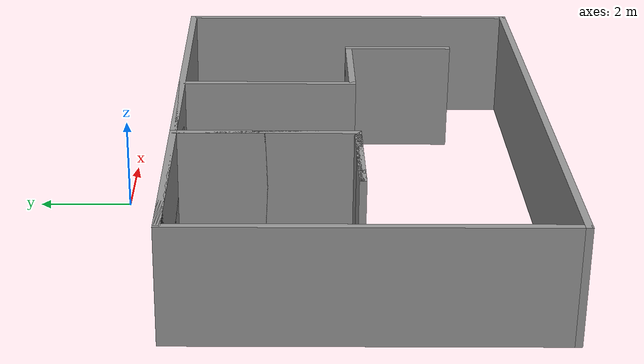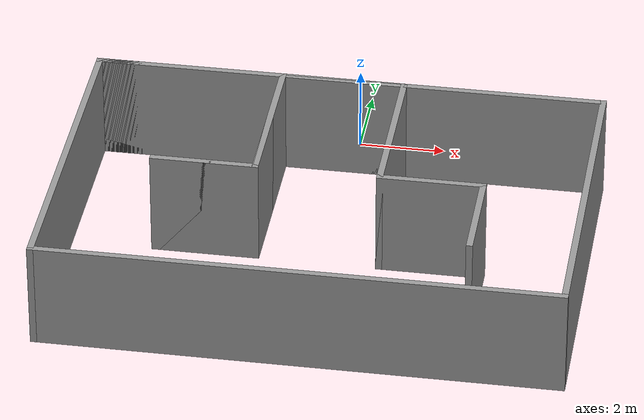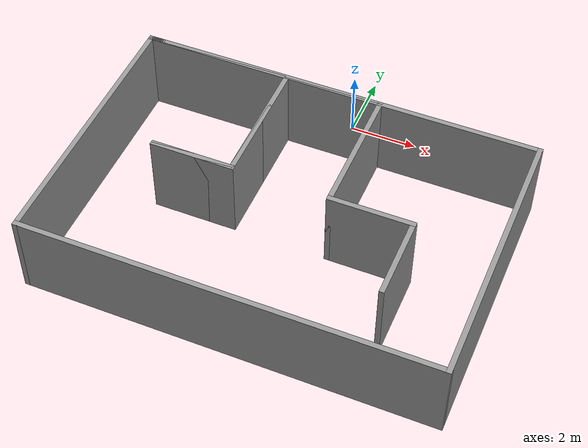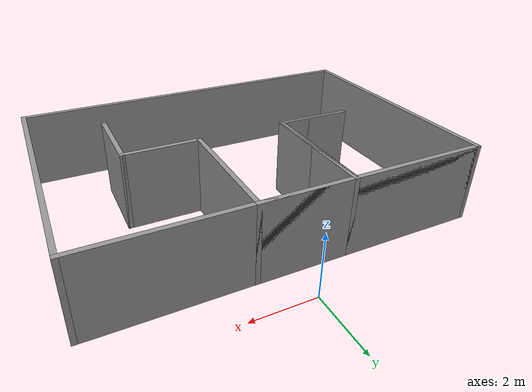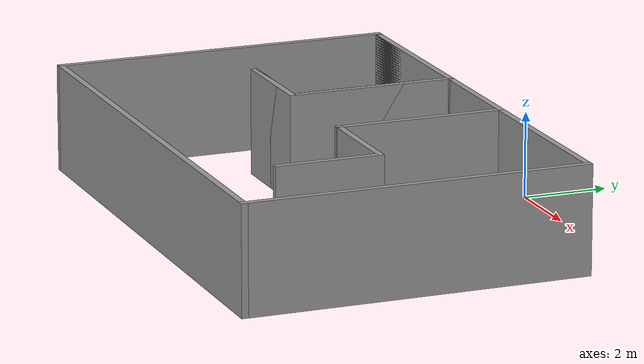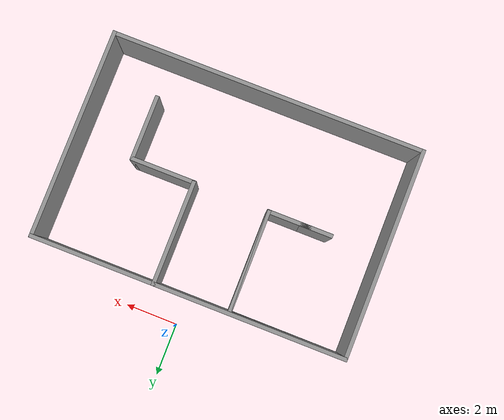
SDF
<?xml version='1.0'?>
<sdf version='1.7'>
  <model name='home'>
    <pose>-0.095 -4.5375 0 0 -0 0</pose>
    <link name='Wall_10'>
      <collision name='Wall_10_Collision'>
        <geometry>
          <box>
            <size>12 0.15 2.5</size>
          </box>
        </geometry>
        <pose>0 0 1.25 0 -0 0</pose>
      </collision>
      <visual name='Wall_10_Visual'>
        <pose>0 0 1.25 0 -0 0</pose>
        <geometry>
          <box>
            <size>12 0.15 2.5</size>
          </box>
        </geometry>
        <material>
          <script>
            <uri>file://media/materials/scripts/gazebo.material</uri>
            <name>Gazebo/Grey</name>
          </script>
          <ambient>1 1 1 1</ambient>
        </material>
        <meta>
          <layer>0</layer>
        </meta>
      </visual>
      <pose>0 3.3875 0 0 -0 0</pose>
    </link>
    <link name='Wall_11'>
      <collision name='Wall_11_Collision'>
        <geometry>
          <box>
            <size>8 0.15 2.5</size>
          </box>
        </geometry>
        <pose>0 0 1.25 0 -0 0</pose>
      </collision>
      <visual name='Wall_11_Visual'>
        <pose>0 0 1.25 0 -0 0</pose>
        <geometry>
          <box>
            <size>8 0.15 2.5</size>
          </box>
        </geometry>
        <material>
          <script>
            <uri>file://media/materials/scripts/gazebo.material</uri>
            <name>Gazebo/Grey</name>
          </script>
          <ambient>1 1 1 1</ambient>
        </material>
        <meta>
          <layer>0</layer>
        </meta>
      </visual>
      <pose>5.925 -0.537499 0 0 -0 -1.5708</pose>
    </link>
    <link name='Wall_12'>
      <collision name='Wall_12_Collision'>
        <geometry>
          <box>
            <size>12 0.15 2.5</size>
          </box>
        </geometry>
        <pose>0 0 1.25 0 -0 0</pose>
      </collision>
      <visual name='Wall_12_Visual'>
        <pose>0 0 1.25 0 -0 0</pose>
        <geometry>
          <box>
            <size>12 0.15 2.5</size>
          </box>
        </geometry>
        <material>
          <script>
            <uri>file://media/materials/scripts/gazebo.material</uri>
            <name>Gazebo/Grey</name>
          </script>
          <ambient>1 1 1 1</ambient>
        </material>
        <meta>
          <layer>0</layer>
        </meta>
      </visual>
      <pose>0 -4.4625 0 0 -0 3.14159</pose>
    </link>
    <link name='Wall_13'>
      <collision name='Wall_13_Collision'>
        <geometry>
          <box>
            <size>8 0.15 2.5</size>
          </box>
        </geometry>
        <pose>0 0 1.25 0 -0 0</pose>
      </collision>
      <visual name='Wall_13_Visual'>
        <pose>0 0 1.25 0 -0 0</pose>
        <geometry>
          <box>
            <size>8 0.15 2.5</size>
          </box>
        </geometry>
        <material>
          <script>
            <uri>file://media/materials/scripts/gazebo.material</uri>
            <name>Gazebo/Grey</name>
          </script>
          <ambient>1 1 1 1</ambient>
        </material>
        <meta>
          <layer>0</layer>
        </meta>
      </visual>
      <pose>-5.925 -0.537499 0 0 -0 1.5708</pose>
    </link>
    <link name='Wall_14'>
      <collision name='Wall_14_Collision'>
        <geometry>
          <box>
            <size>4.5 0.15 2.5</size>
          </box>
        </geometry>
        <pose>0 0 1.25 0 -0 0</pose>
      </collision>
      <visual name='Wall_14_Visual'>
        <pose>0 0 1.25 0 -0 0</pose>
        <geometry>
          <box>
            <size>4.5 0.15 2.5</size>
          </box>
        </geometry>
        <material>
          <script>
            <uri>file://media/materials/scripts/gazebo.material</uri>
            <name>Gazebo/Grey</name>
          </script>
          <ambient>1 1 1 1</ambient>
        </material>
        <meta>
          <layer>0</layer>
        </meta>
      </visual>
      <pose>-3.75 3.3875 0 0 -0 0</pose>
    </link>
    <link name='Wall_15'>
      <collision name='Wall_15_Collision'>
        <geometry>
          <box>
            <size>4 0.15 2.5</size>
          </box>
        </geometry>
        <pose>0 0 1.25 0 -0 0</pose>
      </collision>
      <visual name='Wall_15_Visual'>
        <pose>0 0 1.25 0 -0 0</pose>
        <geometry>
          <box>
            <size>4 0.15 2.5</size>
          </box>
        </geometry>
        <material>
          <script>
            <uri>file://media/materials/scripts/gazebo.material</uri>
            <name>Gazebo/Grey</name>
          </script>
          <ambient>1 1 1 1</ambient>
        </material>
        <meta>
          <layer>0</layer>
        </meta>
      </visual>
      <pose>-1.575 1.4625 0 0 -0 -1.5708</pose>
    </link>
    <link name='Wall_16'>
      <collision name='Wall_16_Collision'>
        <geometry>
          <box>
            <size>2.5 0.15 2.5</size>
          </box>
        </geometry>
        <pose>0 0 1.25 0 -0 0</pose>
      </collision>
      <visual name='Wall_16_Visual'>
        <pose>0 0 1.25 0 -0 0</pose>
        <geometry>
          <box>
            <size>2.5 0.15 2.5</size>
          </box>
        </geometry>
        <material>
          <script>
            <uri>file://media/materials/scripts/gazebo.material</uri>
            <name>Gazebo/Grey</name>
          </script>
          <ambient>1 1 1 1</ambient>
        </material>
        <meta>
          <layer>0</layer>
        </meta>
      </visual>
      <pose>-2.75 -0.4625 0 0 -0 3.14159</pose>
    </link>
    <link name='Wall_17'>
      <collision name='Wall_17_Collision'>
        <geometry>
          <box>
            <size>2.5 0.15 2.5</size>
          </box>
        </geometry>
        <pose>0 0 1.25 0 -0 0</pose>
      </collision>
      <visual name='Wall_17_Visual'>
        <pose>0 0 1.25 0 -0 0</pose>
        <geometry>
          <box>
            <size>2.5 0.15 2.5</size>
          </box>
        </geometry>
        <material>
          <script>
            <uri>file://media/materials/scripts/gazebo.material</uri>
            <name>Gazebo/Grey</name>
          </script>
          <ambient>1 1 1 1</ambient>
        </material>
        <meta>
          <layer>0</layer>
        </meta>
      </visual>
      <pose>-2.75 -0.4625 0 0 -0 0</pose>
    </link>
    <link name='Wall_18'>
      <collision name='Wall_18_Collision'>
        <geometry>
          <box>
            <size>4 0.15 2.5</size>
          </box>
        </geometry>
        <pose>0 0 1.25 0 -0 0</pose>
      </collision>
      <visual name='Wall_18_Visual'>
        <pose>0 0 1.25 0 -0 0</pose>
        <geometry>
          <box>
            <size>4 0.15 2.5</size>
          </box>
        </geometry>
        <material>
          <script>
            <uri>file://media/materials/scripts/gazebo.material</uri>
            <name>Gazebo/Grey</name>
          </script>
          <ambient>1 1 1 1</ambient>
        </material>
        <meta>
          <layer>0</layer>
        </meta>
      </visual>
      <pose>-1.575 1.4625 0 0 -0 1.5708</pose>
    </link>
    <link name='Wall_19'>
      <collision name='Wall_19_Collision'>
        <geometry>
          <box>
            <size>3 0.15 2.5</size>
          </box>
        </geometry>
        <pose>0 0 1.25 0 -0 0</pose>
      </collision>
      <visual name='Wall_19_Visual'>
        <pose>0 0 1.25 0 -0 0</pose>
        <geometry>
          <box>
            <size>3 0.15 2.5</size>
          </box>
        </geometry>
        <material>
          <script>
            <uri>file://media/materials/scripts/gazebo.material</uri>
            <name>Gazebo/Grey</name>
          </script>
          <ambient>1 1 1 1</ambient>
        </material>
        <meta>
          <layer>0</layer>
        </meta>
      </visual>
      <pose>-0.15 3.3875 0 0 -0 0</pose>
    </link>
    <link name='Wall_20'>
      <collision name='Wall_20_Collision'>
        <geometry>
          <box>
            <size>4 0.15 2.5</size>
          </box>
        </geometry>
        <pose>0 0 1.25 0 -0 0</pose>
      </collision>
      <visual name='Wall_20_Visual'>
        <pose>0 0 1.25 0 -0 0</pose>
        <geometry>
          <box>
            <size>4 0.15 2.5</size>
          </box>
        </geometry>
        <material>
          <script>
            <uri>file://media/materials/scripts/gazebo.material</uri>
            <name>Gazebo/Grey</name>
          </script>
          <ambient>1 1 1 1</ambient>
        </material>
        <meta>
          <layer>0</layer>
        </meta>
      </visual>
      <pose>1.275 1.4625 0 0 -0 -1.5708</pose>
    </link>
    <link name='Wall_21'>
      <collision name='Wall_21_Collision'>
        <geometry>
          <box>
            <size>2.5 0.15 2.5</size>
          </box>
        </geometry>
        <pose>0 0 1.25 0 -0 0</pose>
      </collision>
      <visual name='Wall_21_Visual'>
        <pose>0 0 1.25 0 -0 0</pose>
        <geometry>
          <box>
            <size>2.5 0.15 2.5</size>
          </box>
        </geometry>
        <material>
          <script>
            <uri>file://media/materials/scripts/gazebo.material</uri>
            <name>Gazebo/Grey</name>
          </script>
          <ambient>1 1 1 1</ambient>
        </material>
        <meta>
          <layer>0</layer>
        </meta>
      </visual>
      <pose>2.45 -0.4625 0 0 -0 0</pose>
    </link>
    <link name='Wall_22'>
      <collision name='Wall_22_Collision'>
        <geometry>
          <box>
            <size>2.5 0.15 2.5</size>
          </box>
        </geometry>
        <pose>0 0 1.25 0 -0 0</pose>
      </collision>
      <visual name='Wall_22_Visual'>
        <pose>0 0 1.25 0 -0 0</pose>
        <geometry>
          <box>
            <size>2.5 0.15 2.5</size>
          </box>
        </geometry>
        <material>
          <script>
            <uri>file://media/materials/scripts/gazebo.material</uri>
            <name>Gazebo/Grey</name>
          </script>
          <ambient>1 1 1 1</ambient>
        </material>
        <meta>
          <layer>0</layer>
        </meta>
      </visual>
      <pose>3.625 -1.6375 0 0 -0 -1.5708</pose>
    </link>
    <static>1</static>
  </model>
</sdf>
